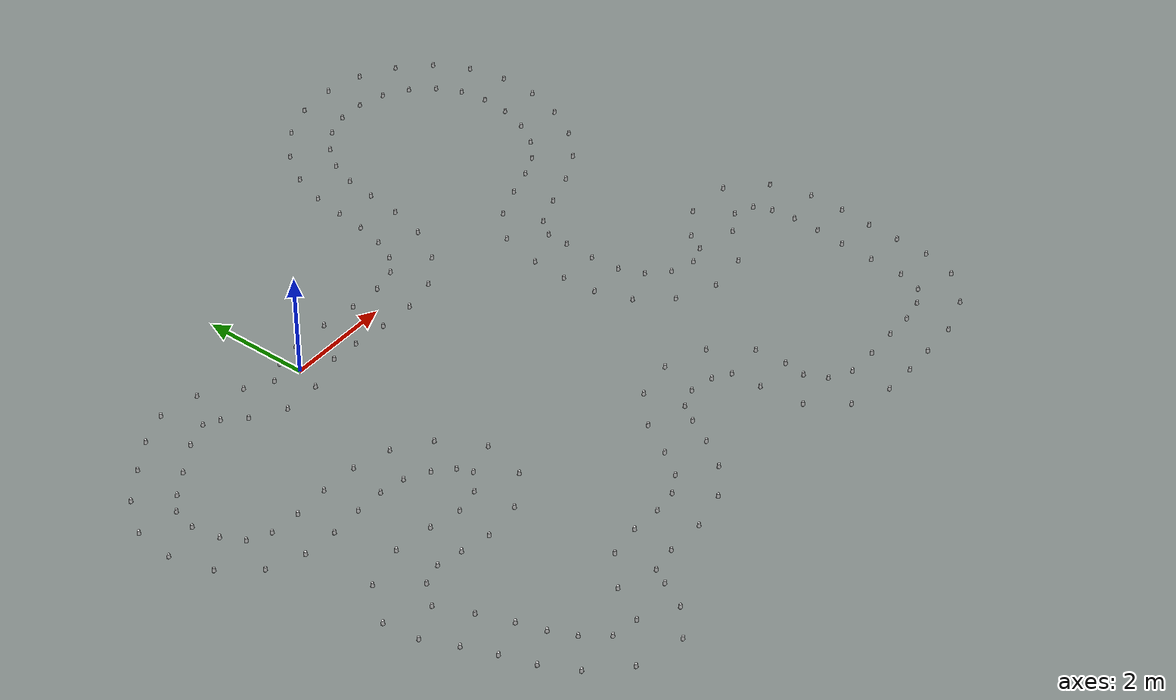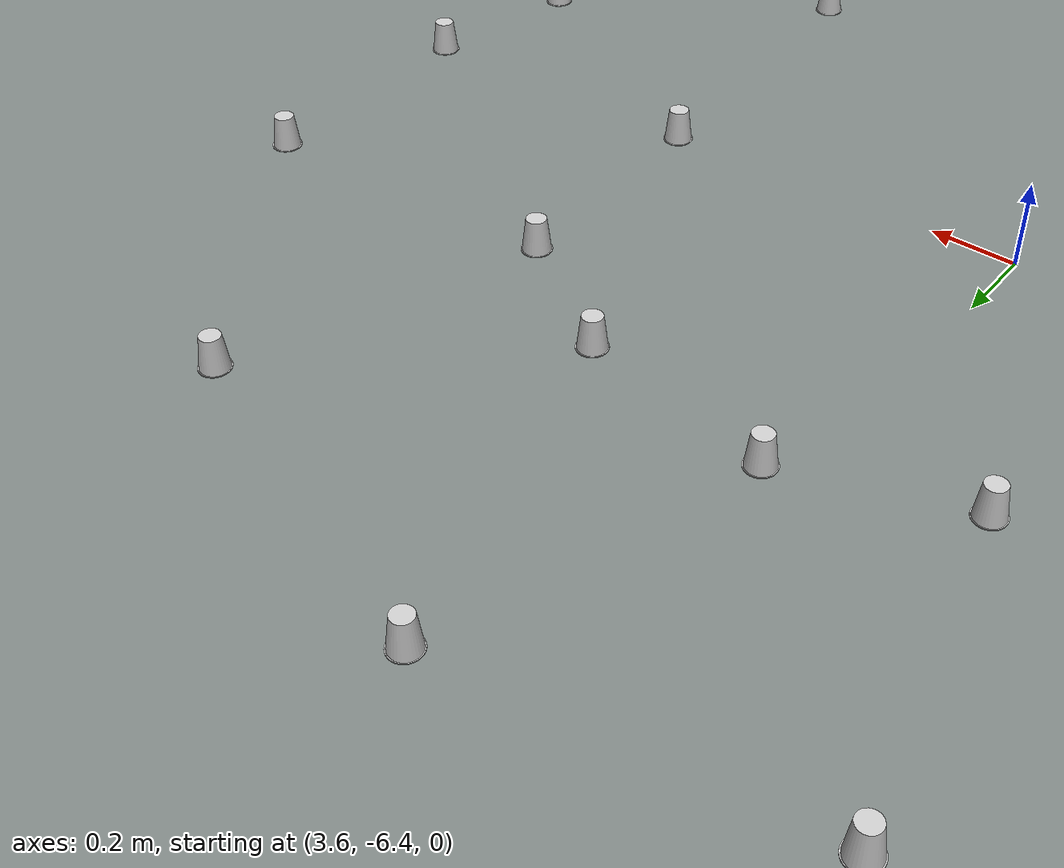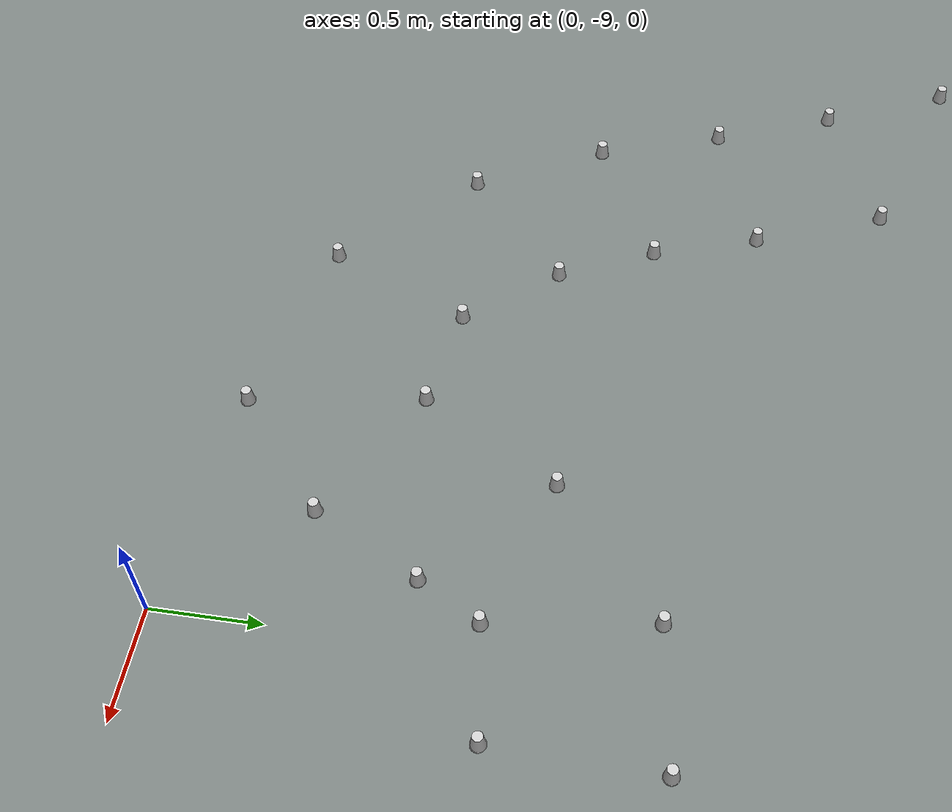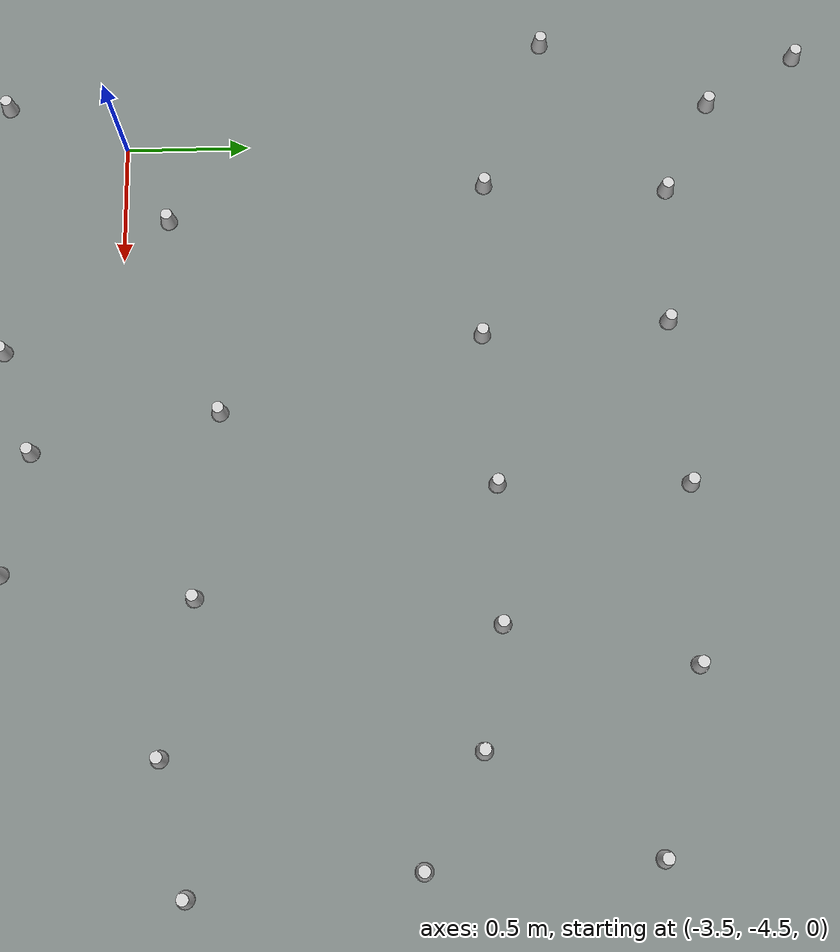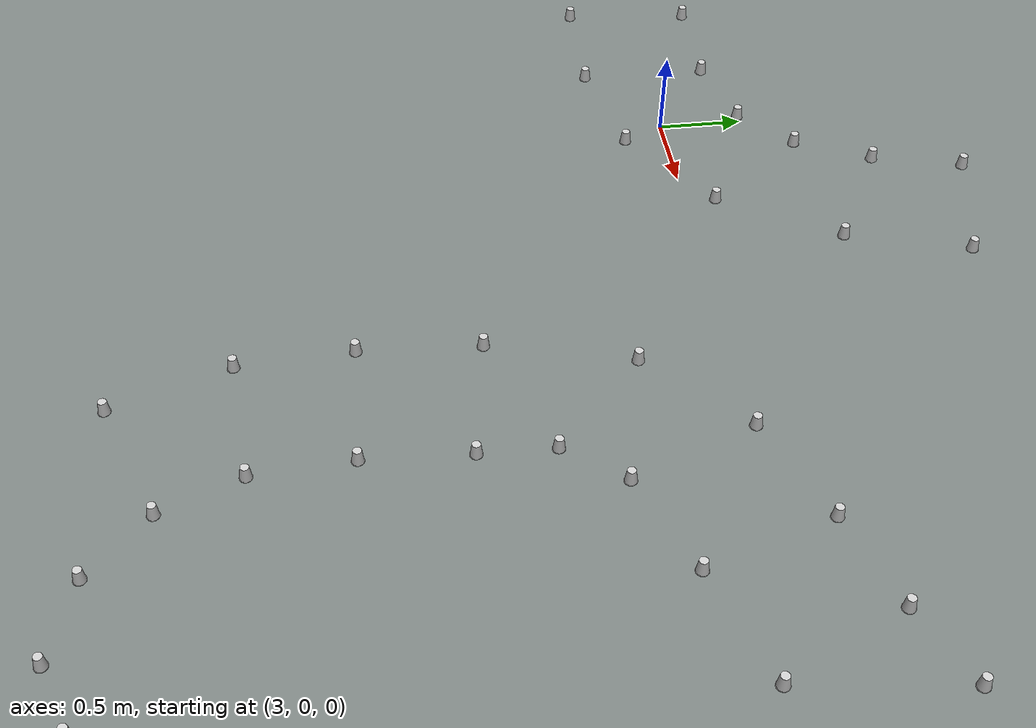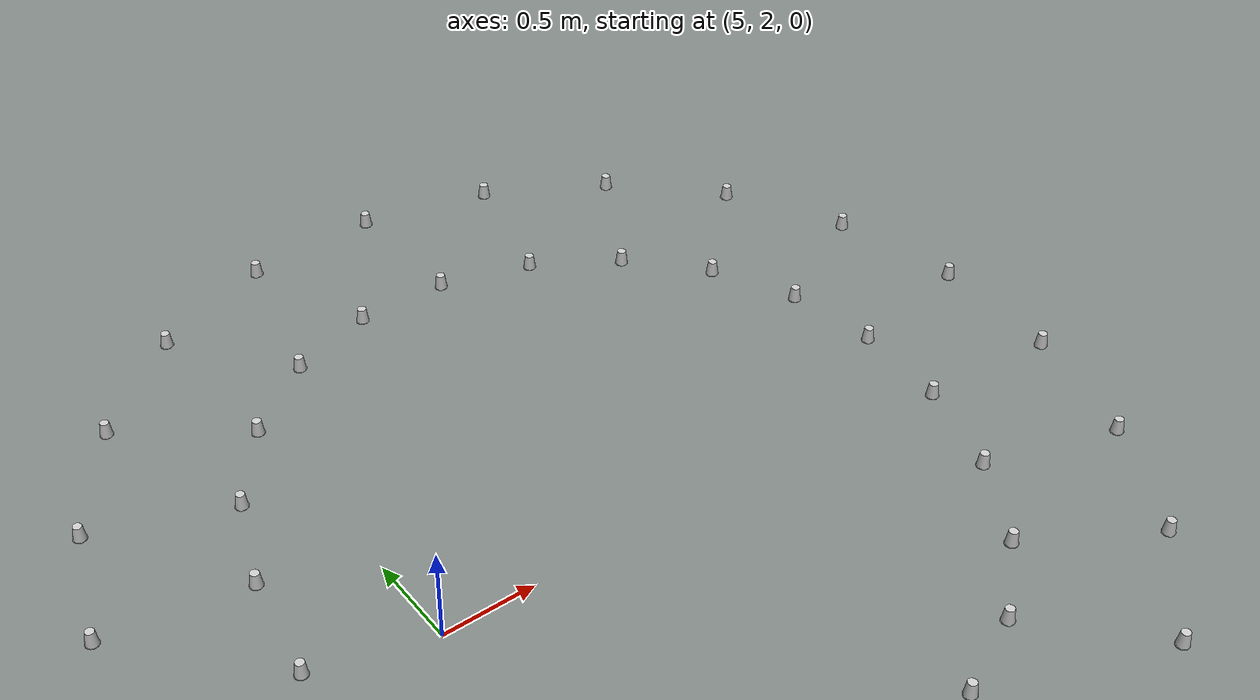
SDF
<?xml version='1.0' encoding='UTF-8'?>
<sdf version="1.4">
  <model name="some track">
    <include>
      <uri>model://cone_yellow</uri>
      <pose>0.5892900437646912 -0.2602460556319409 0 0 0 0</pose>
      <name>cone_right_0</name>
    </include>
    <include>
      <uri>model://cone_yellow</uri>
      <pose>1.1174388736898482 -0.2924435404785846 0 0 0 0</pose>
      <name>cone_right_1</name>
    </include>
    <include>
      <uri>model://cone_yellow</uri>
      <pose>1.762171220544613 -0.356375672292962 0 0 0 0</pose>
      <name>cone_right_2</name>
    </include>
    <include>
      <uri>model://cone_yellow</uri>
      <pose>2.443490747731861 -0.3736733118956314 0 0 0 0</pose>
      <name>cone_right_3</name>
    </include>
    <include>
      <uri>model://cone_yellow</uri>
      <pose>3.112209520799177 -0.24055318060533848 0 0 0 0</pose>
      <name>cone_right_4</name>
    </include>
    <include>
      <uri>model://cone_yellow</uri>
      <pose>3.7137301979040775 0.17863367252695 0 0 0 0</pose>
      <name>cone_right_5</name>
    </include>
    <include>
      <uri>model://cone_yellow</uri>
      <pose>4.111791382034077 0.8334788698119091 0 0 0 0</pose>
      <name>cone_right_6</name>
    </include>
    <include>
      <uri>model://cone_yellow</uri>
      <pose>4.307385197953749 1.52373471757602 0 0 0 0</pose>
      <name>cone_right_7</name>
    </include>
    <include>
      <uri>model://cone_yellow</uri>
      <pose>4.396132852774732 2.17297476519664 0 0 0 0</pose>
      <name>cone_right_8</name>
    </include>
    <include>
      <uri>model://cone_yellow</uri>
      <pose>4.488080797090999 2.749431258055769 0 0 0 0</pose>
      <name>cone_right_9</name>
    </include>
    <include>
      <uri>model://cone_yellow</uri>
      <pose>4.673679966524531 3.240916766468559 0 0 0 0</pose>
      <name>cone_right_10</name>
    </include>
    <include>
      <uri>model://cone_yellow</uri>
      <pose>4.9833029422999315 3.654973643336083 0 0 0 0</pose>
      <name>cone_right_11</name>
    </include>
    <include>
      <uri>model://cone_yellow</uri>
      <pose>5.392798743202256 3.9650499430740194 0 0 0 0</pose>
      <name>cone_right_12</name>
    </include>
    <include>
      <uri>model://cone_yellow</uri>
      <pose>5.859960027963133 4.117887717499206 0 0 0 0</pose>
      <name>cone_right_13</name>
    </include>
    <include>
      <uri>model://cone_yellow</uri>
      <pose>6.358580988629493 4.119495692975835 0 0 0 0</pose>
      <name>cone_right_14</name>
    </include>
    <include>
      <uri>model://cone_yellow</uri>
      <pose>6.852399466366174 3.979535583078981 0 0 0 0</pose>
      <name>cone_right_15</name>
    </include>
    <include>
      <uri>model://cone_yellow</uri>
      <pose>7.289246444853148 3.7086462558370368 0 0 0 0</pose>
      <name>cone_right_16</name>
    </include>
    <include>
      <uri>model://cone_yellow</uri>
      <pose>7.632870702647568 3.332750399955344 0 0 0 0</pose>
      <name>cone_right_17</name>
    </include>
    <include>
      <uri>model://cone_yellow</uri>
      <pose>7.8454518124425086 2.8860180123026997 0 0 0 0</pose>
      <name>cone_right_18</name>
    </include>
    <include>
      <uri>model://cone_yellow</uri>
      <pose>7.922786938924446 2.392470830202374 0 0 0 0</pose>
      <name>cone_right_19</name>
    </include>
    <include>
      <uri>model://cone_yellow</uri>
      <pose>7.874976767578445 1.8691312935245534 0 0 0 0</pose>
      <name>cone_right_20</name>
    </include>
    <include>
      <uri>model://cone_yellow</uri>
      <pose>7.704773119452486 1.3544567787380317 0 0 0 0</pose>
      <name>cone_right_21</name>
    </include>
    <include>
      <uri>model://cone_yellow</uri>
      <pose>7.424830283488135 0.9066777184503869 0 0 0 0</pose>
      <name>cone_right_22</name>
    </include>
    <include>
      <uri>model://cone_yellow</uri>
      <pose>7.059732948313037 0.5870423538854455 0 0 0 0</pose>
      <name>cone_right_23</name>
    </include>
    <include>
      <uri>model://cone_yellow</uri>
      <pose>6.623488589403615 0.3934722243130232 0 0 0 0</pose>
      <name>cone_right_24</name>
    </include>
    <include>
      <uri>model://cone_yellow</uri>
      <pose>6.07639563485299 0.2204117543107988 0 0 0 0</pose>
      <name>cone_right_25</name>
    </include>
    <include>
      <uri>model://cone_yellow</uri>
      <pose>5.461439760725738 -0.022033271259298326 0 0 0 0</pose>
      <name>cone_right_26</name>
    </include>
    <include>
      <uri>model://cone_yellow</uri>
      <pose>4.943709271053829 -0.524334218770662 0 0 0 0</pose>
      <name>cone_right_27</name>
    </include>
    <include>
      <uri>model://cone_yellow</uri>
      <pose>4.742820441732486 -1.3198946833874632 0 0 0 0</pose>
      <name>cone_right_28</name>
    </include>
    <include>
      <uri>model://cone_yellow</uri>
      <pose>4.703651804008882 -1.9956321274314557 0 0 0 0</pose>
      <name>cone_right_29</name>
    </include>
    <include>
      <uri>model://cone_yellow</uri>
      <pose>4.744229417619171 -2.6384803614338064 0 0 0 0</pose>
      <name>cone_right_30</name>
    </include>
    <include>
      <uri>model://cone_yellow</uri>
      <pose>4.973615894140285 -3.2960487328848314 0 0 0 0</pose>
      <name>cone_right_31</name>
    </include>
    <include>
      <uri>model://cone_yellow</uri>
      <pose>5.461700126450949 -3.8690250953534555 0 0 0 0</pose>
      <name>cone_right_32</name>
    </include>
    <include>
      <uri>model://cone_yellow</uri>
      <pose>6.18210516659454 -4.201211281366313 0 0 0 0</pose>
      <name>cone_right_33</name>
    </include>
    <include>
      <uri>model://cone_yellow</uri>
      <pose>6.971840495052072 -4.113921833315177 0 0 0 0</pose>
      <name>cone_right_34</name>
    </include>
    <include>
      <uri>model://cone_yellow</uri>
      <pose>7.584978117628175 -3.5473507074657675 0 0 0 0</pose>
      <name>cone_right_35</name>
    </include>
    <include>
      <uri>model://cone_yellow</uri>
      <pose>8.015425204689702 -3.2835450167592035 0 0 0 0</pose>
      <name>cone_right_36</name>
    </include>
    <include>
      <uri>model://cone_yellow</uri>
      <pose>8.377033916855295 -3.4303056596094756 0 0 0 0</pose>
      <name>cone_right_37</name>
    </include>
    <include>
      <uri>model://cone_yellow</uri>
      <pose>8.509269750983002 -3.7585443389892004 0 0 0 0</pose>
      <name>cone_right_38</name>
    </include>
    <include>
      <uri>model://cone_yellow</uri>
      <pose>8.556346583468374 -4.206764626897616 0 0 0 0</pose>
      <name>cone_right_39</name>
    </include>
    <include>
      <uri>model://cone_yellow</uri>
      <pose>8.538867600651606 -4.7184347209921915 0 0 0 0</pose>
      <name>cone_right_40</name>
    </include>
    <include>
      <uri>model://cone_yellow</uri>
      <pose>8.480643736672464 -5.282877204590151 0 0 0 0</pose>
      <name>cone_right_41</name>
    </include>
    <include>
      <uri>model://cone_yellow</uri>
      <pose>8.446288811311844 -5.931986087817066 0 0 0 0</pose>
      <name>cone_right_42</name>
    </include>
    <include>
      <uri>model://cone_yellow</uri>
      <pose>8.417588651050346 -6.5754822632808665 0 0 0 0</pose>
      <name>cone_right_43</name>
    </include>
    <include>
      <uri>model://cone_yellow</uri>
      <pose>8.262355194117635 -7.032904332556886 0 0 0 0</pose>
      <name>cone_right_44</name>
    </include>
    <include>
      <uri>model://cone_yellow</uri>
      <pose>7.938021552372715 -7.227580525301518 0 0 0 0</pose>
      <name>cone_right_45</name>
    </include>
    <include>
      <uri>model://cone_yellow</uri>
      <pose>7.471287299175072 -7.324109587528765 0 0 0 0</pose>
      <name>cone_right_46</name>
    </include>
    <include>
      <uri>model://cone_yellow</uri>
      <pose>6.958372022081791 -7.329459937746352 0 0 0 0</pose>
      <name>cone_right_47</name>
    </include>
    <include>
      <uri>model://cone_yellow</uri>
      <pose>6.346712118421171 -7.36183453771752 0 0 0 0</pose>
      <name>cone_right_48</name>
    </include>
    <include>
      <uri>model://cone_yellow</uri>
      <pose>5.760220490662365 -7.364277050114851 0 0 0 0</pose>
      <name>cone_right_49</name>
    </include>
    <include>
      <uri>model://cone_yellow</uri>
      <pose>5.362343355112889 -7.146403403386959 0 0 0 0</pose>
      <name>cone_right_50</name>
    </include>
    <include>
      <uri>model://cone_yellow</uri>
      <pose>5.169927223993955 -6.767412418346781 0 0 0 0</pose>
      <name>cone_right_51</name>
    </include>
    <include>
      <uri>model://cone_yellow</uri>
      <pose>5.225003948539134 -6.358356353898172 0 0 0 0</pose>
      <name>cone_right_52</name>
    </include>
    <include>
      <uri>model://cone_yellow</uri>
      <pose>5.193476509458196 -5.760029490730324 0 0 0 0</pose>
      <name>cone_right_53</name>
    </include>
    <include>
      <uri>model://cone_yellow</uri>
      <pose>4.680888721056885 -5.088783465127608 0 0 0 0</pose>
      <name>cone_right_54</name>
    </include>
    <include>
      <uri>model://cone_yellow</uri>
      <pose>3.8906964267081428 -4.80391340904809 0 0 0 0</pose>
      <name>cone_right_55</name>
    </include>
    <include>
      <uri>model://cone_yellow</uri>
      <pose>3.1183849544137723 -4.935536697020782 0 0 0 0</pose>
      <name>cone_right_56</name>
    </include>
    <include>
      <uri>model://cone_yellow</uri>
      <pose>2.526950530193407 -5.471890227122963 0 0 0 0</pose>
      <name>cone_right_57</name>
    </include>
    <include>
      <uri>model://cone_yellow</uri>
      <pose>2.158382044435874 -6.090205577540825 0 0 0 0</pose>
      <name>cone_right_58</name>
    </include>
    <include>
      <uri>model://cone_yellow</uri>
      <pose>1.826569418583305 -6.553987974082125 0 0 0 0</pose>
      <name>cone_right_59</name>
    </include>
    <include>
      <uri>model://cone_yellow</uri>
      <pose>1.4453335117807984 -6.770083511831225 0 0 0 0</pose>
      <name>cone_right_60</name>
    </include>
    <include>
      <uri>model://cone_yellow</uri>
      <pose>0.9724550499795686 -6.825788885534243 0 0 0 0</pose>
      <name>cone_right_61</name>
    </include>
    <include>
      <uri>model://cone_yellow</uri>
      <pose>0.39540502209935496 -6.801762831478086 0 0 0 0</pose>
      <name>cone_right_62</name>
    </include>
    <include>
      <uri>model://cone_yellow</uri>
      <pose>-0.23787791855154883 -6.887108972693765 0 0 0 0</pose>
      <name>cone_right_63</name>
    </include>
    <include>
      <uri>model://cone_yellow</uri>
      <pose>-0.838615817042671 -7.40658591322641 0 0 0 0</pose>
      <name>cone_right_64</name>
    </include>
    <include>
      <uri>model://cone_yellow</uri>
      <pose>-1.2144608986336374 -8.061100202386578 0 0 0 0</pose>
      <name>cone_right_65</name>
    </include>
    <include>
      <uri>model://cone_yellow</uri>
      <pose>-1.7176696427458464 -7.979914834404359 0 0 0 0</pose>
      <name>cone_right_66</name>
    </include>
    <include>
      <uri>model://cone_yellow</uri>
      <pose>-2.053045192967268 -7.558547495394804 0 0 0 0</pose>
      <name>cone_right_67</name>
    </include>
    <include>
      <uri>model://cone_yellow</uri>
      <pose>-2.2613860640606367 -7.110001992997885 0 0 0 0</pose>
      <name>cone_right_68</name>
    </include>
    <include>
      <uri>model://cone_yellow</uri>
      <pose>-2.4235912143530807 -6.607658339484699 0 0 0 0</pose>
      <name>cone_right_69</name>
    </include>
    <include>
      <uri>model://cone_yellow</uri>
      <pose>-2.6638970852563357 -5.99226514293363 0 0 0 0</pose>
      <name>cone_right_70</name>
    </include>
    <include>
      <uri>model://cone_yellow</uri>
      <pose>-2.9467334606644244 -5.355120618524431 0 0 0 0</pose>
      <name>cone_right_71</name>
    </include>
    <include>
      <uri>model://cone_yellow</uri>
      <pose>-2.1898929772543103 -4.843524712287916 0 0 0 0</pose>
      <name>cone_right_72</name>
    </include>
    <include>
      <uri>model://cone_yellow</uri>
      <pose>-1.7084726518063629 -4.940254943532167 0 0 0 0</pose>
      <name>cone_right_73</name>
    </include>
    <include>
      <uri>model://cone_yellow</uri>
      <pose>-1.1513840650091611 -5.055855287771089 0 0 0 0</pose>
      <name>cone_right_74</name>
    </include>
    <include>
      <uri>model://cone_yellow</uri>
      <pose>-0.3856161231230252 -4.959316345861592 0 0 0 0</pose>
      <name>cone_right_75</name>
    </include>
    <include>
      <uri>model://cone_yellow</uri>
      <pose>0.28930368672348306 -4.521011388258264 0 0 0 0</pose>
      <name>cone_right_76</name>
    </include>
    <include>
      <uri>model://cone_yellow</uri>
      <pose>0.4876953145828132 -3.7070850004743763 0 0 0 0</pose>
      <name>cone_right_77</name>
    </include>
    <include>
      <uri>model://cone_yellow</uri>
      <pose>0.03750698635889094 -2.92585940940986 0 0 0 0</pose>
      <name>cone_right_78</name>
    </include>
    <include>
      <uri>model://cone_yellow</uri>
      <pose>-0.5898956701009257 -2.495055404220885 0 0 0 0</pose>
      <name>cone_right_79</name>
    </include>
    <include>
      <uri>model://cone_yellow</uri>
      <pose>-1.2866474536763166 -2.3077369272690773 0 0 0 0</pose>
      <name>cone_right_80</name>
    </include>
    <include>
      <uri>model://cone_yellow</uri>
      <pose>-1.9901340795298197 -2.281663270603612 0 0 0 0</pose>
      <name>cone_right_81</name>
    </include>
    <include>
      <uri>model://cone_yellow</uri>
      <pose>-2.6668788116399758 -2.3133535893385346 0 0 0 0</pose>
      <name>cone_right_82</name>
    </include>
    <include>
      <uri>model://cone_yellow</uri>
      <pose>-3.2468572867038135 -2.2778598744376306 0 0 0 0</pose>
      <name>cone_right_83</name>
    </include>
    <include>
      <uri>model://cone_yellow</uri>
      <pose>-3.6384215301876077 -2.07573685147908 0 0 0 0</pose>
      <name>cone_right_84</name>
    </include>
    <include>
      <uri>model://cone_yellow</uri>
      <pose>-3.850126488662864 -1.6925945343075868 0 0 0 0</pose>
      <name>cone_right_85</name>
    </include>
    <include>
      <uri>model://cone_yellow</uri>
      <pose>-3.94266424605255 -1.180370034208737 0 0 0 0</pose>
      <name>cone_right_86</name>
    </include>
    <include>
      <uri>model://cone_yellow</uri>
      <pose>-3.832430951655983 -0.7341436072461159 0 0 0 0</pose>
      <name>cone_right_87</name>
    </include>
    <include>
      <uri>model://cone_yellow</uri>
      <pose>-3.5431141259870755 -0.4797498892701535 0 0 0 0</pose>
      <name>cone_right_88</name>
    </include>
    <include>
      <uri>model://cone_yellow</uri>
      <pose>-3.082526101471988 -0.18365006972557277 0 0 0 0</pose>
      <name>cone_right_89</name>
    </include>
    <include>
      <uri>model://cone_yellow</uri>
      <pose>-2.5161466707486233 0.17560619125096721 0 0 0 0</pose>
      <name>cone_right_90</name>
    </include>
    <include>
      <uri>model://cone_yellow</uri>
      <pose>-2.023870521741663 0.35499472247482683 0 0 0 0</pose>
      <name>cone_right_91</name>
    </include>
    <include>
      <uri>model://cone_yellow</uri>
      <pose>-1.7540590043523374 0.20275892533635748 0 0 0 0</pose>
      <name>cone_right_92</name>
    </include>
    <include>
      <uri>model://cone_yellow</uri>
      <pose>-1.4287964528206194 -0.13208455003035718 0 0 0 0</pose>
      <name>cone_right_93</name>
    </include>
    <include>
      <uri>model://cone_yellow</uri>
      <pose>-0.8533508139711801 -0.4870532572667142 0 0 0 0</pose>
      <name>cone_right_94</name>
    </include>
    <include>
      <uri>model://cone_yellow</uri>
      <pose>-2.6122543679075676 -4.967925149361399 0 0 0 0</pose>
      <name>cone_right_95</name>
    </include>
    <include>
      <uri>model://cone_yellow</uri>
      <pose>-0.14480796264603413 -0.4816589579767907 0 0 0 0</pose>
      <name>cone_right_96</name>
    </include>
    <include>
      <uri>model://cone_blue</uri>
      <pose>0.4362738975728921 0.47397874577741617 0 0 0 0</pose>
      <name>cone_left_0</name>
    </include>
    <include>
      <uri>model://cone_blue</uri>
      <pose>1.1472020387426094 0.4569656628316244 0 0 0 0</pose>
      <name>cone_left_1</name>
    </include>
    <include>
      <uri>model://cone_blue</uri>
      <pose>1.8354482676893593 0.3900360601722683 0 0 0 0</pose>
      <name>cone_left_2</name>
    </include>
    <include>
      <uri>model://cone_blue</uri>
      <pose>2.4613974959596145 0.376112889876519 0 0 0 0</pose>
      <name>cone_left_3</name>
    </include>
    <include>
      <uri>model://cone_blue</uri>
      <pose>2.95462623295514 0.492704964519735 0 0 0 0</pose>
      <name>cone_left_4</name>
    </include>
    <include>
      <uri>model://cone_blue</uri>
      <pose>3.254506978379504 0.771604190048256 0 0 0 0</pose>
      <name>cone_left_5</name>
    </include>
    <include>
      <uri>model://cone_blue</uri>
      <pose>3.4559671074892977 1.1973394487673854 0 0 0 0</pose>
      <name>cone_left_6</name>
    </include>
    <include>
      <uri>model://cone_blue</uri>
      <pose>3.582663706244062 1.716811799214637 0 0 0 0</pose>
      <name>cone_left_7</name>
    </include>
    <include>
      <uri>model://cone_blue</uri>
      <pose>3.6525664913993676 2.2710006099060895 0 0 0 0</pose>
      <name>cone_left_8</name>
    </include>
    <include>
      <uri>model://cone_blue</uri>
      <pose>3.7474159004307106 2.8673952816189097 0 0 0 0</pose>
      <name>cone_left_9</name>
    </include>
    <include>
      <uri>model://cone_blue</uri>
      <pose>3.9686870830090233 3.496817204515252 0 0 0 0</pose>
      <name>cone_left_10</name>
    </include>
    <include>
      <uri>model://cone_blue</uri>
      <pose>4.371236070627384 4.0884181548955 0 0 0 0</pose>
      <name>cone_left_11</name>
    </include>
    <include>
      <uri>model://cone_blue</uri>
      <pose>4.923414182857535 4.550009885728208 0 0 0 0</pose>
      <name>cone_left_12</name>
    </include>
    <include>
      <uri>model://cone_blue</uri>
      <pose>5.599143290274041 4.821076617682664 0 0 0 0</pose>
      <name>cone_left_13</name>
    </include>
    <include>
      <uri>model://cone_blue</uri>
      <pose>6.328419454985308 4.868888968825192 0 0 0 0</pose>
      <name>cone_left_14</name>
    </include>
    <include>
      <uri>model://cone_blue</uri>
      <pose>7.035317166807424 4.706887708851145 0 0 0 0</pose>
      <name>cone_left_15</name>
    </include>
    <include>
      <uri>model://cone_blue</uri>
      <pose>7.666198349636728 4.3570344585983385 0 0 0 0</pose>
      <name>cone_left_16</name>
    </include>
    <include>
      <uri>model://cone_blue</uri>
      <pose>8.172136002358851 3.85399212557533 0 0 0 0</pose>
      <name>cone_left_17</name>
    </include>
    <include>
      <uri>model://cone_blue</uri>
      <pose>8.511985659800516 3.229867732858256 0 0 0 0</pose>
      <name>cone_left_18</name>
    </include>
    <include>
      <uri>model://cone_blue</uri>
      <pose>8.659755215293568 2.531674851787691 0 0 0 0</pose>
      <name>cone_left_19</name>
    </include>
    <include>
      <uri>model://cone_blue</uri>
      <pose>8.623239878258692 1.8181183814814301 0 0 0 0</pose>
      <name>cone_left_20</name>
    </include>
    <include>
      <uri>model://cone_blue</uri>
      <pose>8.421111531366762 1.1322872947485925 0 0 0 0</pose>
      <name>cone_left_21</name>
    </include>
    <include>
      <uri>model://cone_blue</uri>
      <pose>8.068606805951038 0.5219027333934425 0 0 0 0</pose>
      <name>cone_left_22</name>
    </include>
    <include>
      <uri>model://cone_blue</uri>
      <pose>7.570803582952717 0.03812814710173057 0 0 0 0</pose>
      <name>cone_left_23</name>
    </include>
    <include>
      <uri>model://cone_blue</uri>
      <pose>6.9511668203578365 -0.2811587688667385 0 0 0 0</pose>
      <name>cone_left_24</name>
    </include>
    <include>
      <uri>model://cone_blue</uri>
      <pose>6.307125333606696 -0.4932154635789226 0 0 0 0</pose>
      <name>cone_left_25</name>
    </include>
    <include>
      <uri>model://cone_blue</uri>
      <pose>5.737329313911002 -0.7194463156191209 0 0 0 0</pose>
      <name>cone_left_26</name>
    </include>
    <include>
      <uri>model://cone_blue</uri>
      <pose>5.492426216853102 -1.0356166391536807 0 0 0 0</pose>
      <name>cone_left_27</name>
    </include>
    <include>
      <uri>model://cone_blue</uri>
      <pose>5.481580310558516 -1.4492540905140703 0 0 0 0</pose>
      <name>cone_left_28</name>
    </include>
    <include>
      <uri>model://cone_blue</uri>
      <pose>5.45256036376873 -2.0360792425131415 0 0 0 0</pose>
      <name>cone_left_29</name>
    </include>
    <include>
      <uri>model://cone_blue</uri>
      <pose>5.492530888752142 -2.588033277273945 0 0 0 0</pose>
      <name>cone_left_30</name>
    </include>
    <include>
      <uri>model://cone_blue</uri>
      <pose>5.675993000608332 -3.033053675308509 0 0 0 0</pose>
      <name>cone_left_31</name>
    </include>
    <include>
      <uri>model://cone_blue</uri>
      <pose>6.0146627504207375 -3.3623374830197363 0 0 0 0</pose>
      <name>cone_left_32</name>
    </include>
    <include>
      <uri>model://cone_blue</uri>
      <pose>6.464818225295454 -3.5065363023725586 0 0 0 0</pose>
      <name>cone_left_33</name>
    </include>
    <include>
      <uri>model://cone_blue</uri>
      <pose>6.833727613913145 -3.3767482906106765 0 0 0 0</pose>
      <name>cone_left_34</name>
    </include>
    <include>
      <uri>model://cone_blue</uri>
      <pose>7.027196892447559 -3.0459725020798425 0 0 0 0</pose>
      <name>cone_left_35</name>
    </include>
    <include>
      <uri>model://cone_blue</uri>
      <pose>7.60729332376679 -2.654316625970671 0 0 0 0</pose>
      <name>cone_left_36</name>
    </include>
    <include>
      <uri>model://cone_blue</uri>
      <pose>8.485163207007508 -2.688141219198067 0 0 0 0</pose>
      <name>cone_left_37</name>
    </include>
    <include>
      <uri>model://cone_blue</uri>
      <pose>9.095566986048023 -3.290831230176638 0 0 0 0</pose>
      <name>cone_left_38</name>
    </include>
    <include>
      <uri>model://cone_blue</uri>
      <pose>9.291796191745712 -4.059748050673333 0 0 0 0</pose>
      <name>cone_left_39</name>
    </include>
    <include>
      <uri>model://cone_blue</uri>
      <pose>9.288754863464234 -4.731438300168127 0 0 0 0</pose>
      <name>cone_left_40</name>
    </include>
    <include>
      <uri>model://cone_blue</uri>
      <pose>9.226858941297417 -5.358129237031407 0 0 0 0</pose>
      <name>cone_left_41</name>
    </include>
    <include>
      <uri>model://cone_blue</uri>
      <pose>9.195267066873003 -5.971121400471526 0 0 0 0</pose>
      <name>cone_left_42</name>
    </include>
    <include>
      <uri>model://cone_blue</uri>
      <pose>9.166844384287936 -6.608886547595921 0 0 0 0</pose>
      <name>cone_left_43</name>
    </include>
    <include>
      <uri>model://cone_blue</uri>
      <pose>8.97849063777851 -7.255727191197205 0 0 0 0</pose>
      <name>cone_left_44</name>
    </include>
    <include>
      <uri>model://cone_blue</uri>
      <pose>8.420257185757887 -7.8019922190313755 0 0 0 0</pose>
      <name>cone_left_45</name>
    </include>
    <include>
      <uri>model://cone_blue</uri>
      <pose>7.674113771804218 -8.046163201882171 0 0 0 0</pose>
      <name>cone_left_46</name>
    </include>
    <include>
      <uri>model://cone_blue</uri>
      <pose>6.982181947575462 -8.079081900770372 0 0 0 0</pose>
      <name>cone_left_47</name>
    </include>
    <include>
      <uri>model://cone_blue</uri>
      <pose>6.386457126601868 -8.110780686866253 0 0 0 0</pose>
      <name>cone_left_48</name>
    </include>
    <include>
      <uri>model://cone_blue</uri>
      <pose>5.7638988649169525 -8.11426802976917 0 0 0 0</pose>
      <name>cone_left_49</name>
    </include>
    <include>
      <uri>model://cone_blue</uri>
      <pose>5.052748770363554 -7.829522128861445 0 0 0 0</pose>
      <name>cone_left_50</name>
    </include>
    <include>
      <uri>model://cone_blue</uri>
      <pose>4.5503726793330355 -7.19008506495406 0 0 0 0</pose>
      <name>cone_left_51</name>
    </include>
    <include>
      <uri>model://cone_blue</uri>
      <pose>4.475105228939112 -6.370681545265706 0 0 0 0</pose>
      <name>cone_left_52</name>
    </include>
    <include>
      <uri>model://cone_blue</uri>
      <pose>4.4445321747893525 -5.799808675833138 0 0 0 0</pose>
      <name>cone_left_53</name>
    </include>
    <include>
      <uri>model://cone_blue</uri>
      <pose>4.136372852389174 -5.604537736820096 0 0 0 0</pose>
      <name>cone_left_54</name>
    </include>
    <include>
      <uri>model://cone_blue</uri>
      <pose>3.679570718355648 -5.523584122133358 0 0 0 0</pose>
      <name>cone_left_55</name>
    </include>
    <include>
      <uri>model://cone_blue</uri>
      <pose>3.290339156815747 -5.665558444831285 0 0 0 0</pose>
      <name>cone_left_56</name>
    </include>
    <include>
      <uri>model://cone_blue</uri>
      <pose>3.072350819430335 -5.986709151114959 0 0 0 0</pose>
      <name>cone_left_57</name>
    </include>
    <include>
      <uri>model://cone_blue</uri>
      <pose>2.807959143428148 -6.4651050206782905 0 0 0 0</pose>
      <name>cone_left_58</name>
    </include>
    <include>
      <uri>model://cone_blue</uri>
      <pose>2.437815140828853 -6.988589707898867 0 0 0 0</pose>
      <name>cone_left_59</name>
    </include>
    <include>
      <uri>model://cone_blue</uri>
      <pose>1.8537024096507988 -7.3991581045882695 0 0 0 0</pose>
      <name>cone_left_60</name>
    </include>
    <include>
      <uri>model://cone_blue</uri>
      <pose>1.1056983809269778 -7.563858133476494 0 0 0 0</pose>
      <name>cone_left_61</name>
    </include>
    <include>
      <uri>model://cone_blue</uri>
      <pose>0.3745381924465185 -7.551472492226991 0 0 0 0</pose>
      <name>cone_left_62</name>
    </include>
    <include>
      <uri>model://cone_blue</uri>
      <pose>-0.13140324589921137 -7.629512598818785 0 0 0 0</pose>
      <name>cone_left_63</name>
    </include>
    <include>
      <uri>model://cone_blue</uri>
      <pose>-0.29209825049704635 -7.920218612202097 0 0 0 0</pose>
      <name>cone_left_64</name>
    </include>
    <include>
      <uri>model://cone_blue</uri>
      <pose>-0.5584474119061036 -8.424619535065853 0 0 0 0</pose>
      <name>cone_left_65</name>
    </include>
    <include>
      <uri>model://cone_blue</uri>
      <pose>-1.095382187914663 -8.869711760180952 0 0 0 0</pose>
      <name>cone_left_66</name>
    </include>
    <include>
      <uri>model://cone_blue</uri>
      <pose>-2.6111494528536916 -8.059566092950451 0 0 0 0</pose>
      <name>cone_left_67</name>
    </include>
    <include>
      <uri>model://cone_blue</uri>
      <pose>-2.932698695816854 -7.444425901300717 0 0 0 0</pose>
      <name>cone_left_68</name>
    </include>
    <include>
      <uri>model://cone_blue</uri>
      <pose>-3.1356256170650263 -6.84325759532954 0 0 0 0</pose>
      <name>cone_left_69</name>
    </include>
    <include>
      <uri>model://cone_blue</uri>
      <pose>-3.3622994417427465 -6.265640614500172 0 0 0 0</pose>
      <name>cone_left_70</name>
    </include>
    <include>
      <uri>model://cone_blue</uri>
      <pose>-3.6320598606162044 -5.65979704611464 0 0 0 0</pose>
      <name>cone_left_71</name>
    </include>
    <include>
      <uri>model://cone_blue</uri>
      <pose>-3.7073865964226687 -4.995326073843072 0 0 0 0</pose>
      <name>cone_left_72</name>
    </include>
    <include>
      <uri>model://cone_blue</uri>
      <pose>-3.167632405784537 -4.322018328648952 0 0 0 0</pose>
      <name>cone_left_73</name>
    </include>
    <include>
      <uri>model://cone_blue</uri>
      <pose>-2.333922397546749 -4.107484274478807 0 0 0 0</pose>
      <name>cone_left_74</name>
    </include>
    <include>
      <uri>model://cone_blue</uri>
      <pose>-1.5941988651549328 -4.199011729948163 0 0 0 0</pose>
      <name>cone_left_75</name>
    </include>
    <include>
      <uri>model://cone_blue</uri>
      <pose>-0.9996235850860674 -4.321369919139751 0 0 0 0</pose>
      <name>cone_left_76</name>
    </include>
    <include>
      <uri>model://cone_blue</uri>
      <pose>-0.5026022007436356 -4.2184963558215385 0 0 0 0</pose>
      <name>cone_left_77</name>
    </include>
    <include>
      <uri>model://cone_blue</uri>
      <pose>-0.150422606678679 -3.913441814554318 0 0 0 0</pose>
      <name>cone_left_78</name>
    </include>
    <include>
      <uri>model://cone_blue</uri>
      <pose>-0.2597772756164642 -3.6455648663654268 0 0 0 0</pose>
      <name>cone_left_79</name>
    </include>
    <include>
      <uri>model://cone_blue</uri>
      <pose>-0.5721184482587174 -3.362731048987542 0 0 0 0</pose>
      <name>cone_left_80</name>
    </include>
    <include>
      <uri>model://cone_blue</uri>
      <pose>-0.9920913265394347 -3.128094624129097 0 0 0 0</pose>
      <name>cone_left_81</name>
    </include>
    <include>
      <uri>model://cone_blue</uri>
      <pose>-1.4607686766046608 -3.037244843419367 0 0 0 0</pose>
      <name>cone_left_82</name>
    </include>
    <include>
      <uri>model://cone_blue</uri>
      <pose>-2.0092371238052094 -3.031419946932281 0 0 0 0</pose>
      <name>cone_left_83</name>
    </include>
    <include>
      <uri>model://cone_blue</uri>
      <pose>-2.6306686914669943 -3.0624789641571013 0 0 0 0</pose>
      <name>cone_left_84</name>
    </include>
    <include>
      <uri>model://cone_blue</uri>
      <pose>-3.2899680072161783 -3.0266198264762694 0 0 0 0</pose>
      <name>cone_left_85</name>
    </include>
    <include>
      <uri>model://cone_blue</uri>
      <pose>-3.9448673198707365 -2.7602739052500818 0 0 0 0</pose>
      <name>cone_left_86</name>
    </include>
    <include>
      <uri>model://cone_blue</uri>
      <pose>-4.459760581895243 -2.1294540911090087 0 0 0 0</pose>
      <name>cone_left_87</name>
    </include>
    <include>
      <uri>model://cone_blue</uri>
      <pose>-4.672462983178173 -1.3532682796881126 0 0 0 0</pose>
      <name>cone_left_88</name>
    </include>
    <include>
      <uri>model://cone_blue</uri>
      <pose>-4.570947328055302 -0.6034012583685672 0 0 0 0</pose>
      <name>cone_left_89</name>
    </include>
    <include>
      <uri>model://cone_blue</uri>
      <pose>-4.110837509008091 0.010342102473410497 0 0 0 0</pose>
      <name>cone_left_90</name>
    </include>
    <include>
      <uri>model://cone_blue</uri>
      <pose>-3.502916875556992 0.43745507198894473 0 0 0 0</pose>
      <name>cone_left_91</name>
    </include>
    <include>
      <uri>model://cone_blue</uri>
      <pose>-2.9180281820528786 0.8088448910094449 0 0 0 0</pose>
      <name>cone_left_92</name>
    </include>
    <include>
      <uri>model://cone_blue</uri>
      <pose>-2.290840693711961 1.055870551190691 0 0 0 0</pose>
      <name>cone_left_93</name>
    </include>
    <include>
      <uri>model://cone_blue</uri>
      <pose>-1.5514012519373144 0.9248599123084646 0 0 0 0</pose>
      <name>cone_left_94</name>
    </include>
    <include>
      <uri>model://cone_blue</uri>
      <pose>-0.9337919871527403 0.43136072590055136 0 0 0 0</pose>
      <name>cone_left_95</name>
    </include>
    <include>
      <uri>model://cone_blue</uri>
      <pose>-0.4651254949537101 0.15464846602361923 0 0 0 0</pose>
      <name>cone_left_96</name>
    </include>
    <include>
      <uri>model://cone_blue</uri>
      <pose>-2.0178240975491093 -8.657879091775222 0 0 0 0</pose>
      <name>cone_left_97</name>
    </include>
    <include>
      <uri>model://cone_blue</uri>
      <pose>-0.0775139697752607 0.38194728386474 0 0 0 0</pose>
      <name>cone_left_98</name>
    </include>
  </model>
</sdf>

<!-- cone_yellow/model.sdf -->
<sdf version='1.4'>
  <model name="cone_yellow">
    <link name="link">
    <collision name="collision"><geometry><box><size> 0.05 0.05 0.01</size>
             </box></geometry></collision>
      <visual name="visual">
        <geometry>
          <mesh>
            <uri>model://cup.dae</uri>
            <scale>1 1 1</scale>
          </mesh>
        </geometry>
        <material>
            <script>
              <uri>model://cone_yellow/materials/scripts</uri>
              <uri>model://cone_yellow/materials/textures</uri>
              <name>cone_yellow/Image</name>
            </script>
        </material>
      </visual>
    </link>
  </model>
</sdf>

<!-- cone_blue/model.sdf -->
<sdf version='1.4'>
  <model name="cone_blue">
    <link name="link">
    <collision name="collision"><geometry><box><size> 0.05 0.05 0.01</size>
             </box></geometry></collision>
      <visual name="visual">
        <geometry>
          <mesh>
            <uri>model://cup.dae</uri>
            <scale>1 1 1</scale>
          </mesh>
        </geometry>
        <material>
            <script>
              <uri>model://cone_blue/materials/scripts</uri>
              <uri>model://cone_blue/materials/textures</uri>
              <name>cone_blue/Image</name>
            </script>
        </material>
      </visual>
    </link>
  </model>
</sdf>
